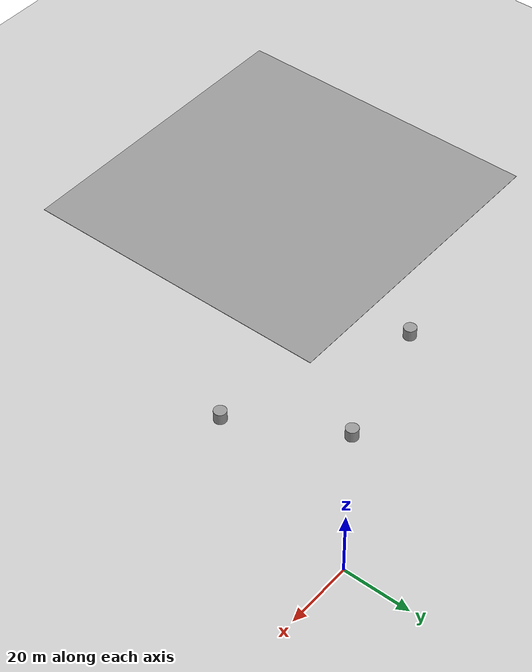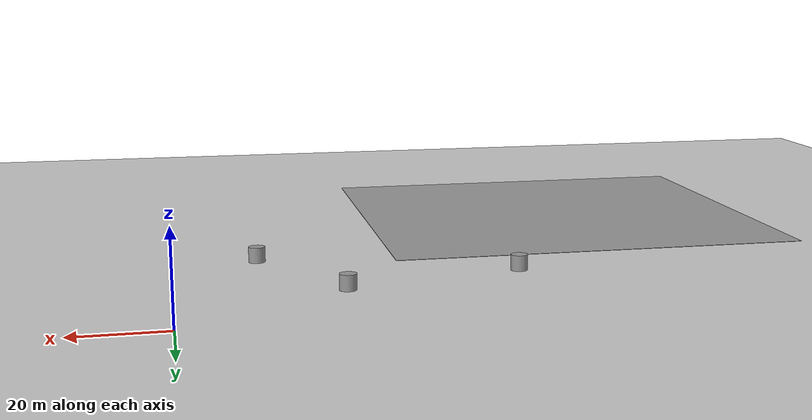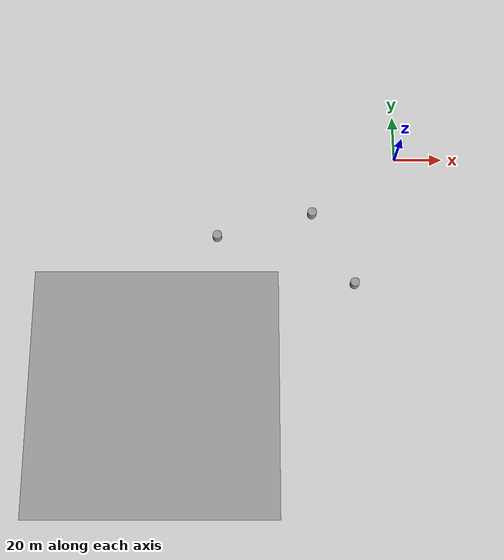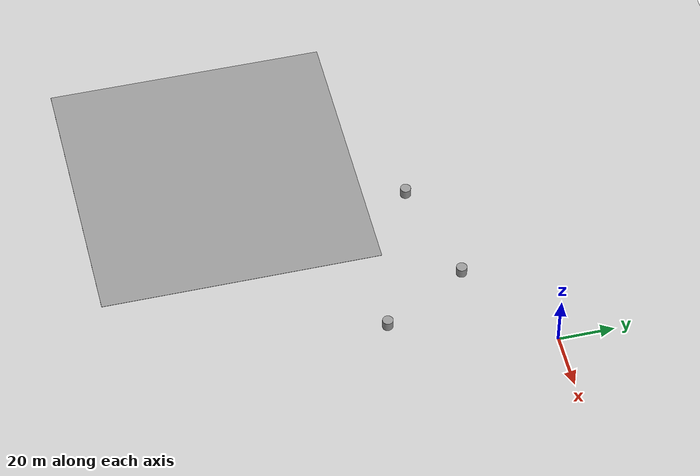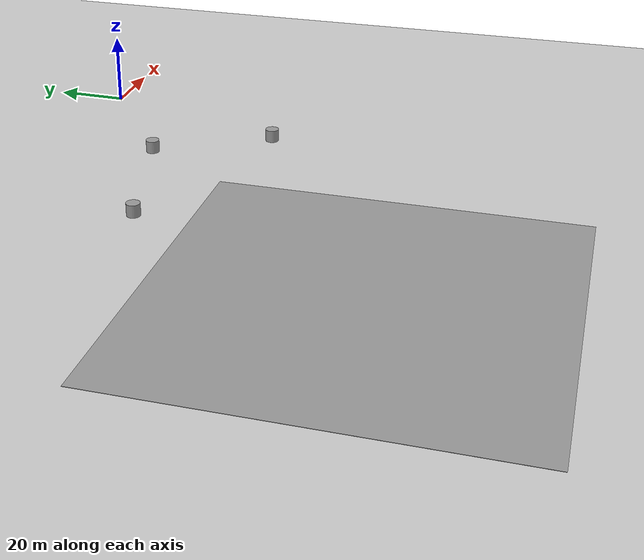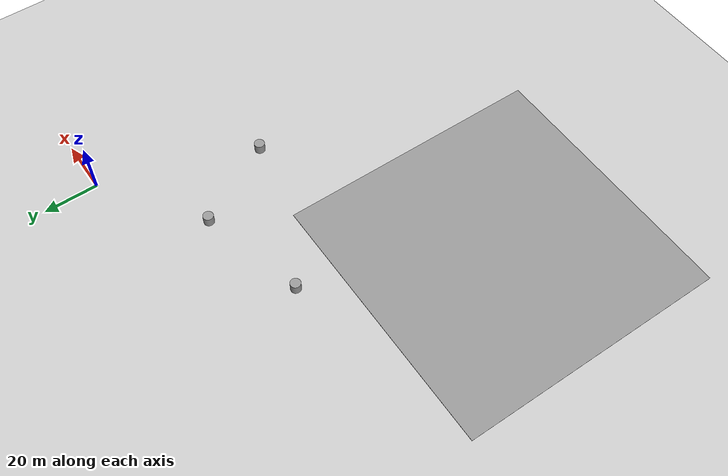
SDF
<sdf version="1.6">
 <world name="default">
  <model name="ground_plane">
   <static>1</static>
   <link name="link">
    <collision name="collision">
     <geometry><plane><normal>0 0 1</normal><size>100 100</size></plane></geometry>
     <surface>
      <contact><collide_bitmask>65535</collide_bitmask></contact>
      <friction><ode><mu>100</mu><mu2>50</mu2></ode></friction>
     </surface>
    </collision>
    <visual name="visual">
     <cast_shadows>0</cast_shadows>
     <geometry><plane><normal>0 0 1</normal><size>100 100</size></plane></geometry>
     <material>
      <script><uri>file://media/materials/scripts/gazebo.material</uri><name>Gazebo/Grey</name></script>
     </material>
    </visual>
   </link>
  </model>
  <model name="ground_plane_4">
   <static>1</static>
   <link name="link">
    <collision name="collision">
     <geometry><plane><normal>0 0 1</normal><size>100 100</size></plane></geometry>
     <surface>
      <contact><collide_bitmask>65535</collide_bitmask></contact>
      <friction><ode><mu>100</mu><mu2>50</mu2></ode></friction>
     </surface>
    </collision>
    <visual name="visual">
     <cast_shadows>0</cast_shadows>
     <geometry><plane><normal>0 0 1</normal><size>100 100</size></plane></geometry>
     <material>
      <script><uri>file://media/materials/scripts/gazebo.material</uri><name>Gazebo/Grey</name></script>
     </material>
    </visual>
   </link>
   <pose>-100 -100 0 0 -0 0</pose>
  </model>
  <model name="unit_cylinder_clone_1">
   <pose>-35.7368 -24.9162 1.77421 0 -0 5e-06</pose>
   <link name="link">
    <inertial>
     <mass>1</mass>
     <inertia><ixx>0.145833</ixx><ixy>0</ixy><ixz>0</ixz><iyy>0.145833</iyy><iyz>0</iyz><izz>0.125</izz></inertia>
    </inertial>
    <collision name="collision">
     <geometry><cylinder><radius>1.89093</radius><length>3.54843</length></cylinder></geometry>
    </collision>
    <visual name="visual">
     <geometry><cylinder><radius>1.89093</radius><length>3.54843</length></cylinder></geometry>
     <material>
      <script><name>Gazebo/Grey</name><uri>file://media/materials/scripts/gazebo.material</uri></script>
     </material>
    </visual>
   </link>
  </model>
  <model name="unit_cylinder_clone_3">
   <pose>-75.1612 -35.0556 1.77422 0 -0 3e-06</pose>
   <link name="link">
    <inertial>
     <mass>1</mass>
     <inertia><ixx>0.145833</ixx><ixy>0</ixy><ixz>0</ixz><iyy>0.145833</iyy><iyz>0</iyz><izz>0.125</izz></inertia>
    </inertial>
    <collision name="collision">
     <geometry><cylinder><radius>1.89093</radius><length>3.54843</length></cylinder></geometry>
    </collision>
    <visual name="visual">
     <geometry><cylinder><radius>1.89093</radius><length>3.54843</length></cylinder></geometry>
     <material>
      <script><name>Gazebo/Grey</name><uri>file://media/materials/scripts/gazebo.material</uri></script>
     </material>
    </visual>
   </link>
  </model>
  <model name="unit_cylinder_clone_9">
   <pose>-18.8827 -55.6621 1.77422 0 -0 -4e-06</pose>
   <link name="link">
    <inertial>
     <mass>1</mass>
     <inertia><ixx>0.145833</ixx><ixy>0</ixy><ixz>0</ixz><iyy>0.145833</iyy><iyz>0</iyz><izz>0.125</izz></inertia>
    </inertial>
    <collision name="collision">
     <geometry><cylinder><radius>1.89093</radius><length>3.54843</length></cylinder></geometry>
    </collision>
    <visual name="visual">
     <geometry><cylinder><radius>1.89093</radius><length>3.54843</length></cylinder></geometry>
     <material>
      <script><name>Gazebo/Grey</name><uri>file://media/materials/scripts/gazebo.material</uri></script>
     </material>
    </visual>
   </link>
  </model>
 </world>
</sdf>
